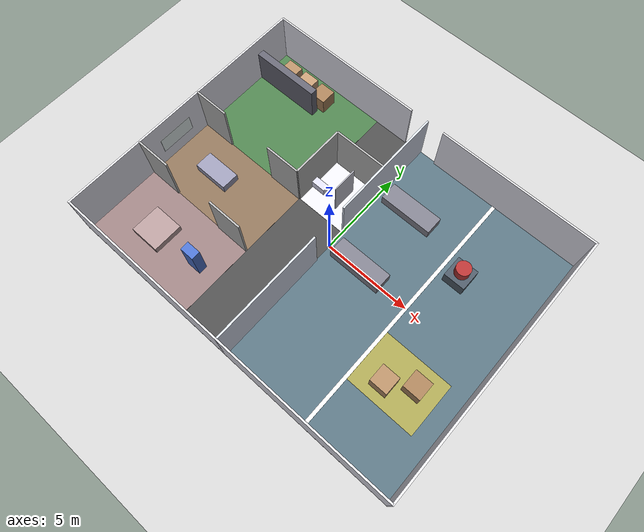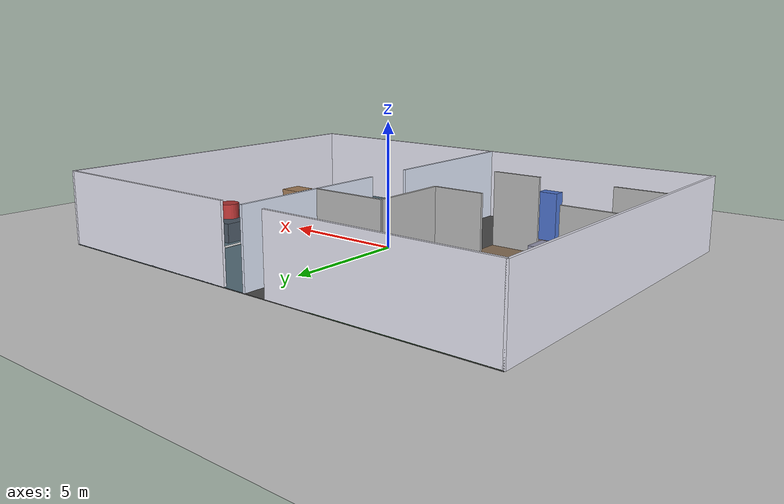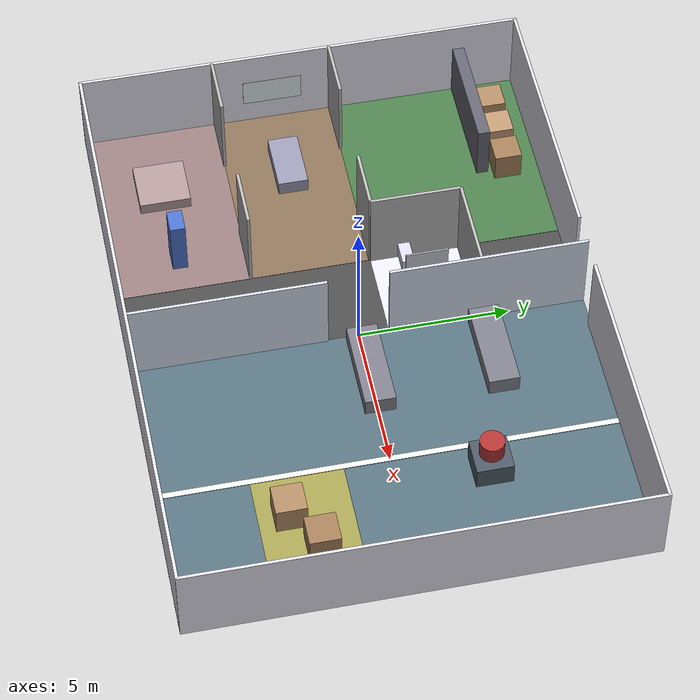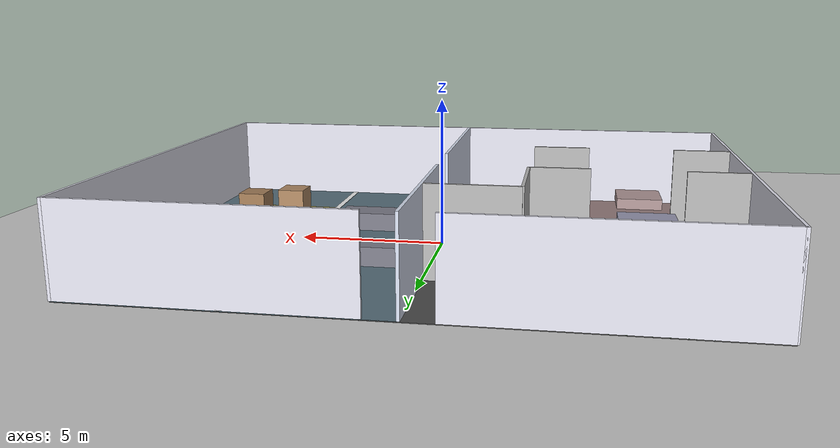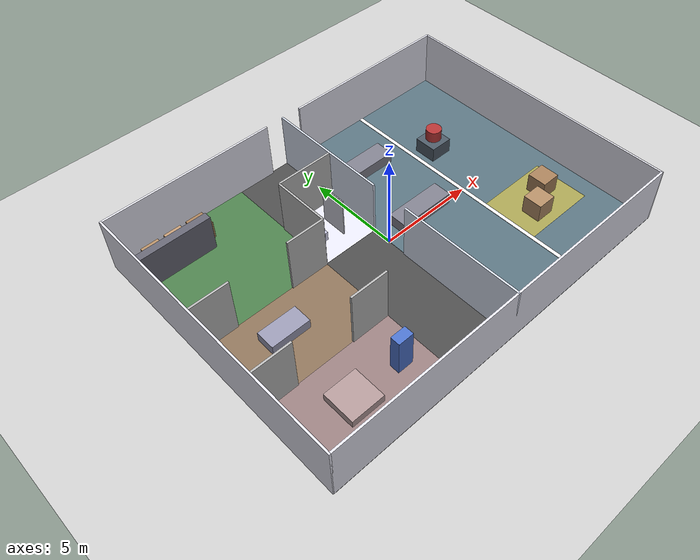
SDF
<?xml version="1.0" ?>
<sdf version="1.6">
  <world name="nice_workshop_world">

    <!-- 기본 바닥 & 태양 -->
    <include>
      <uri>model://ground_plane</uri>
    </include>

    <include>
      <uri>model://sun</uri>
    </include>

    <!-- 작업장 위쪽에 조명 하나 -->
    <light name="workshop_light" type="point">
      <pose>3 0 4 0 0 0</pose>
      <diffuse>1 1 1 1</diffuse>
      <specular>0.5 0.5 0.5 1</specular>
      <attenuation>
        <range>20</range>
        <constant>0.5</constant>
        <linear>0.01</linear>
        <quadratic>0.001</quadratic>
      </attenuation>
      <cast_shadows>true</cast_shadows>
    </light>

    <!-- 메인 건물 -->
    <model name="nice_workshop_building">
      <static>true</static>

      <!-- === 전체 건물 바닥 (20 x 15) === -->
      <link name="floor_base">
        <pose>0 0 -0.05 0 0 0</pose>
        <collision name="collision">
          <geometry>
            <box>
              <size>20 15 0.1</size>
            </box>
          </geometry>
        </collision>
        <visual name="visual">
          <geometry>
            <box>
              <size>20 15 0.1</size>
            </box>
          </geometry>
          <!-- 약간 짙은 콘크리트 느낌 -->
          <material>
            <script>
              <uri>file://media/materials/scripts/gazebo.material</uri>
              <name>Gazebo/DarkGrey</name>
            </script>
          </material>
        </visual>
      </link>

      <!-- === 각 공간별 바닥 패턴 (살짝 올려서 색만 다르게) === -->
      <!-- 작업장: 오른쪽 전체 x:0~10, y:-7.5~7.5 -->
      <link name="floor_workshop">
        <pose>5 0 0 0 0 0</pose>
        <collision name="collision">
          <geometry>
            <box>
              <size>10 15 0.02</size>
            </box>
          </geometry>
        </collision>
        <visual name="visual">
          <geometry>
            <box>
              <size>10 15 0.02</size>
            </box>
          </geometry>
          <material>
            <!-- 살짝 푸른빛 나는 공장 바닥 -->
            <ambient>0.3 0.4 0.45 1</ambient>
            <diffuse>0.35 0.45 0.5 1</diffuse>
          </material>
        </visual>
      </link>

      <!-- 창고: x:-10~-3, y:1~7.5 -->
      <link name="floor_warehouse">
        <pose>-6.5 4.25 0 0 0 0</pose>
        <collision name="collision">
          <geometry>
            <box>
              <size>7 6.5 0.02</size>
            </box>
          </geometry>
        </collision>
        <visual name="visual">
          <geometry>
            <box>
              <size>7 6.5 0.02</size>
            </box>
          </geometry>
          <material>
            <!-- 녹색 계열 (창고 느낌) -->
            <ambient>0.25 0.4 0.25 1</ambient>
            <diffuse>0.3 0.5 0.3 1</diffuse>
          </material>
        </visual>
      </link>

      <!-- 사무실: x:-10~-3, y:-3~1 -->
      <link name="floor_office">
        <pose>-6.5 -1 0 0 0 0</pose>
        <collision name="collision">
          <geometry>
            <box>
              <size>7 4 0.02</size>
            </box>
          </geometry>
        </collision>
        <visual name="visual">
          <geometry>
            <box>
              <size>7 4 0.02</size>
            </box>
          </geometry>
          <material>
            <!-- 약간 목재/카펫 느낌 -->
            <ambient>0.45 0.35 0.25 1</ambient>
            <diffuse>0.55 0.45 0.35 1</diffuse>
          </material>
        </visual>
      </link>

      <!-- 휴게실: x:-10~-3, y:-7.5~-3 -->
      <link name="floor_breakroom">
        <pose>-6.5 -5.25 0 0 0 0</pose>
        <collision name="collision">
          <geometry>
            <box>
              <size>7 4.5 0.02</size>
            </box>
          </geometry>
        </collision>
        <visual name="visual">
          <geometry>
            <box>
              <size>7 4.5 0.02</size>
            </box>
          </geometry>
          <material>
            <!-- 따뜻한 색 -->
            <ambient>0.5 0.4 0.4 1</ambient>
            <diffuse>0.6 0.5 0.5 1</diffuse>
          </material>
        </visual>
      </link>

      <!-- 화장실: x:-3~0, y:1~4 -->
      <link name="floor_restroom">
        <pose>-1.5 2.5 0 0 0 0</pose>
        <collision name="collision">
          <geometry>
            <box>
              <size>3 3 0.02</size>
            </box>
          </geometry>
        </collision>
        <visual name="visual">
          <geometry>
            <box>
              <size>3 3 0.02</size>
            </box>
          </geometry>
          <material>
            <!-- 밝은 타일 느낌 -->
            <ambient>0.8 0.8 0.85 1</ambient>
            <diffuse>0.9 0.9 0.95 1</diffuse>
          </material>
        </visual>
      </link>

      <!-- === 외벽 (높이 3m) / 출입구를 위해 중앙 부분은 띄워줌 === -->

      <!-- 북쪽 벽: 출입문(폭 3m) 가운데에 비움 -->
      <link name="wall_north_left">
        <pose>-5.5 7.45 1.5 0 0 0</pose>
        <collision name="collision">
          <geometry>
            <box>
              <size>9 0.1 3</size>
            </box>
          </geometry>
        </collision>
        <visual name="visual">
          <geometry>
            <box>
              <size>9 0.1 3</size>
            </box>
          </geometry>
          <material>
            <ambient>0.9 0.9 0.95 1</ambient>
            <diffuse>0.9 0.9 0.95 1</diffuse>
          </material>
        </visual>
      </link>

      <link name="wall_north_right">
        <pose>5.5 7.45 1.5 0 0 0</pose>
        <collision name="collision">
          <geometry>
            <box>
              <size>9 0.1 3</size>
            </box>
          </geometry>
        </collision>
        <visual name="visual">
          <geometry>
            <box>
              <size>9 0.1 3</size>
            </box>
          </geometry>
          <material>
            <ambient>0.9 0.9 0.95 1</ambient>
          </material>
        </visual>
      </link>

      <!-- 남쪽 벽 (전체) -->
      <link name="wall_south">
        <pose>0 -7.45 1.5 0 0 0</pose>
        <collision name="collision">
          <geometry>
            <box>
              <size>20 0.1 3</size>
            </box>
          </geometry>
        </collision>
        <visual name="visual">
          <geometry>
            <box>
              <size>20 0.1 3</size>
            </box>
          </geometry>
          <material>
            <ambient>0.9 0.9 0.95 1</ambient>
          </material>
        </visual>
      </link>

      <!-- 동쪽 벽 (전체) -->
      <link name="wall_east">
        <pose>10 0 1.5 0 0 0</pose>
        <collision name="collision">
          <geometry>
            <box>
              <size>0.1 15 3</size>
            </box>
          </geometry>
        </collision>
        <visual name="visual">
          <geometry>
            <box>
              <size>0.1 15 3</size>
            </box>
          </geometry>
          <material>
            <ambient>0.9 0.9 0.95 1</ambient>
          </material>
        </visual>
      </link>

      <!-- 서쪽 벽 (전체) -->
      <link name="wall_west">
        <pose>-10 0 1.5 0 0 0</pose>
        <collision name="collision">
          <geometry>
            <box>
              <size>0.1 15 3</size>
            </box>
          </geometry>
        </collision>
        <visual name="visual">
          <geometry>
            <box>
              <size>0.1 15 3</size>
            </box>
          </geometry>
          <material>
            <ambient>0.9 0.9 0.95 1</ambient>
          </material>
        </visual>
      </link>

      <!-- === 내부 벽 (문틈 남겨서 동선 표현) === -->
      <!-- 작업장과 왼쪽 구역을 가르는 중앙 벽 (중앙 부분에 문) -->
      <!-- 위쪽 구간 -->
      <link name="inner_wall_center_top">
        <pose>0 4.25 1.5 0 0 0</pose>
        <collision name="collision">
          <geometry>
            <box>
              <size>0.1 6.5 3</size>
            </box>
          </geometry>
        </collision>
        <visual name="visual">
          <geometry>
            <box>
              <size>0.1 6.5 3</size>
            </box>
          </geometry>
          <material>
            <ambient>0.85 0.88 0.95 1</ambient>
          </material>
        </visual>
      </link>

      <!-- 아래쪽 구간 -->
      <link name="inner_wall_center_bottom">
        <pose>0 -4.25 1.5 0 0 0</pose>
        <collision name="collision">
          <geometry>
            <box>
              <size>0.1 6.5 3</size>
            </box>
          </geometry>
        </collision>
        <visual name="visual">
          <geometry>
            <box>
              <size>0.1 6.5 3</size>
            </box>
          </geometry>
          <material>
            <ambient>0.85 0.88 0.95 1</ambient>
          </material>
        </visual>
      </link>

      <!-- 왼쪽 큰 구역 세로 분할(창고/사무실/휴게실) -->
      <!-- 창고 / 사무실 경계: y=1, 문 중앙에 비움 -->
      <link name="wall_warehouse_office_left">
        <pose>-9 1 1.5 0 0 0</pose>
        <collision name="collision">
          <geometry>
            <box>
              <size>2 0.1 3</size>
            </box>
          </geometry>
        </collision>
        <visual name="visual">
          <geometry>
            <box>
              <size>2 0.1 3</size>
            </box>
          </geometry>
        </visual>
      </link>

      <link name="wall_warehouse_office_right">
        <pose>-4 1 1.5 0 0 0</pose>
        <collision name="collision">
          <geometry>
            <box>
              <size>2 0.1 3</size>
            </box>
          </geometry>
        </collision>
        <visual name="visual">
          <geometry>
            <box>
              <size>2 0.1 3</size>
            </box>
          </geometry>
        </visual>
      </link>

      <!-- 사무실 / 휴게실 경계: y=-3 -->
      <link name="wall_office_break_left">
        <pose>-9 -3 1.5 0 0 0</pose>
        <collision name="collision">
          <geometry>
            <box>
              <size>2 0.1 3</size>
            </box>
          </geometry>
        </collision>
        <visual name="visual">
          <geometry>
            <box>
              <size>2 0.1 3</size>
            </box>
          </geometry>
        </visual>
      </link>

      <link name="wall_office_break_right">
        <pose>-4 -3 1.5 0 0 0</pose>
        <collision name="collision">
          <geometry>
            <box>
              <size>2 0.1 3</size>
            </box>
          </geometry>
        </collision>
        <visual name="visual">
          <geometry>
            <box>
              <size>2 0.1 3</size>
            </box>
          </geometry>
        </visual>
      </link>

      <!-- 화장실 구역 벽 (x=-3~0, y:1~4) -->
      <link name="wall_restroom_back">
        <pose>-1.5 4 1.5 0 0 0</pose>
        <collision name="collision">
          <geometry>
            <box>
              <size>3 0.1 3</size>
            </box>
          </geometry>
        </collision>
        <visual name="visual">
          <geometry>
            <box>
              <size>3 0.1 3</size>
            </box>
          </geometry>
        </visual>
      </link>

      <link name="wall_restroom_side_left">
        <pose>-3 2.5 1.5 0 0 0</pose>
        <collision name="collision">
          <geometry>
            <box>
              <size>0.1 3 3</size>
            </box>
          </geometry>
        </collision>
        <visual name="visual">
          <geometry>
            <box>
              <size>0.1 3 3</size>
            </box>
          </geometry>
        </visual>
      </link>

      <!-- 작업장 쪽으로 열려 있는 앞쪽은 문 없는 오픈 구조 -->

      <!-- ===== 창고 내부: 선반 + 박스들 정렬 ===== -->
      <link name="warehouse_rack_1">
        <pose>-8 5.5 1 0 0 0</pose>
        <collision name="collision">
          <geometry>
            <box>
              <size>4 0.4 2</size>
            </box>
          </geometry>
        </collision>
        <visual name="visual">
          <geometry>
            <box>
              <size>4 0.4 2</size>
            </box>
          </geometry>
          <material>
            <ambient>0.4 0.4 0.45 1</ambient>
          </material>
        </visual>
      </link>

      <!-- 박스 여러 개 -->
      <link name="warehouse_box_1">
        <pose>-8.5 6.3 0.5 0 0 0</pose>
        <collision name="collision">
          <geometry>
            <box>
              <size>0.9 0.9 1</size>
            </box>
          </geometry>
        </collision>
        <visual name="visual">
          <geometry>
            <box>
              <size>0.9 0.9 1</size>
            </box>
          </geometry>
          <material>
            <ambient>0.7 0.55 0.4 1</ambient>
          </material>
        </visual>
      </link>

      <link name="warehouse_box_2">
        <pose>-7.3 6.3 0.5 0 0 0</pose>
        <collision name="collision">
          <geometry>
            <box>
              <size>0.9 0.9 1</size>
            </box>
          </geometry>
        </collision>
        <visual name="visual">
          <geometry>
            <box>
              <size>0.9 0.9 1</size>
            </box>
          </geometry>
          <material>
            <ambient>0.75 0.6 0.45 1</ambient>
          </material>
        </visual>
      </link>

      <link name="warehouse_box_3">
        <pose>-6.1 6.3 0.5 0 0 0</pose>
        <collision name="collision">
          <geometry>
            <box>
              <size>0.9 0.9 1</size>
            </box>
          </geometry>
        </collision>
        <visual name="visual">
          <geometry>
            <box>
              <size>0.9 0.9 1</size>
            </box>
          </geometry>
          <material>
            <ambient>0.65 0.5 0.35 1</ambient>
          </material>
        </visual>
      </link>

      <!-- ===== 사무실: 책상 + 벽에 칠판(화이트보드 느낌) ===== -->
      <link name="office_table">
        <pose>-7 -1 0.75 0 0 0</pose>
        <collision name="collision">
          <geometry>
            <box>
              <size>2 1 0.5</size>
            </box>
          </geometry>
        </collision>
        <visual name="visual">
          <geometry>
            <box>
              <size>2 1 0.5</size>
            </box>
          </geometry>
          <material>
            <ambient>0.6 0.6 0.7 1</ambient>
          </material>
        </visual>
      </link>

      <link name="office_board">
        <pose>-9.9 -1 1.4 0 0 0</pose>
        <collision name="collision">
          <geometry>
            <box>
              <size>0.02 2 1</size>
            </box>
          </geometry>
        </collision>
        <visual name="visual">
          <geometry>
            <box>
              <size>0.02 2 1</size>
            </box>
          </geometry>
          <material>
            <ambient>0.9 0.95 0.95 1</ambient>
            <diffuse>0.9 0.95 0.95 1</diffuse>
          </material>
        </visual>
      </link>

      <!-- ===== 휴게실: 테이블 + 자판기 느낌 박스 ===== -->
      <link name="breakroom_table">
        <pose>-7 -5.3 0.6 0 0 0</pose>
        <collision name="collision">
          <geometry>
            <box>
              <size>1.7 1.7 0.4</size>
            </box>
          </geometry>
        </collision>
        <visual name="visual">
          <geometry>
            <box>
              <size>1.7 1.7 0.4</size>
            </box>
          </geometry>
          <material>
            <ambient>0.7 0.6 0.6 1</ambient>
          </material>
        </visual>
      </link>

      <link name="breakroom_vending">
        <pose>-4.3 -5.2 1.0 0 0 0</pose>
        <collision name="collision">
          <geometry>
            <box>
              <size>0.8 0.5 2.0</size>
            </box>
          </geometry>
        </collision>
        <visual name="visual">
          <geometry>
            <box>
              <size>0.8 0.5 2.0</size>
            </box>
          </geometry>
          <material>
            <ambient>0.3 0.4 0.7 1</ambient>
            <diffuse>0.3 0.45 0.8 1</diffuse>
          </material>
        </visual>
      </link>

      <!-- ===== 화장실: 세면대 + 칸막이 박스 ===== -->
      <link name="restroom_sink">
        <pose>-2.5 2.1 0.5 0 0 0</pose>
        <collision name="collision">
          <geometry>
            <box>
              <size>0.8 0.4 0.5</size>
            </box>
          </geometry>
        </collision>
        <visual name="visual">
          <geometry>
            <box>
              <size>0.8 0.4 0.5</size>
            </box>
          </geometry>
          <material>
            <ambient>0.85 0.85 0.95 1</ambient>
          </material>
        </visual>
      </link>

      <link name="restroom_partition">
        <pose>-1.2 2.5 1.1 0 0 0</pose>
        <collision name="collision">
          <geometry>
            <box>
              <size>0.05 1.4 2.2</size>
            </box>
          </geometry>
        </collision>
        <visual name="visual">
          <geometry>
            <box>
              <size>0.05 1.4 2.2</size>
            </box>
          </geometry>
          <material>
            <ambient>0.8 0.8 0.85 1</ambient>
          </material>
        </visual>
      </link>

      <!-- ===== 작업장: 작업대, 기계, 파렛트 구역 ===== -->

      <!-- 작업대 (롱 테이블) -->
      <link name="workbench_1">
        <pose>2 4 0.8 0 0 0</pose>
        <collision name="collision">
          <geometry>
            <box>
              <size>3 1 0.6</size>
            </box>
          </geometry>
        </collision>
        <visual name="visual">
          <geometry>
            <box>
              <size>3 1 0.6</size>
            </box>
          </geometry>
          <material>
            <ambient>0.5 0.5 0.55 1</ambient>
          </material>
        </visual>
      </link>

      <link name="workbench_2">
        <pose>2 0 0.8 0 0 0</pose>
        <collision name="collision">
          <geometry>
            <box>
              <size>3 1 0.6</size>
            </box>
          </geometry>
        </collision>
        <visual name="visual">
          <geometry>
            <box>
              <size>3 1 0.6</size>
            </box>
          </geometry>
          <material>
            <ambient>0.5 0.5 0.55 1</ambient>
          </material>
        </visual>
      </link>

      <!-- 공장 기계 느낌: 낮은 박스 위에 실린더 -->
      <link name="machine_1_base">
        <pose>6 3 0.4 0 0 0</pose>
        <collision name="collision">
          <geometry>
            <box>
              <size>1.2 1.2 0.8</size>
            </box>
          </geometry>
        </collision>
        <visual name="visual">
          <geometry>
            <box>
              <size>1.2 1.2 0.8</size>
            </box>
          </geometry>
          <material>
            <ambient>0.3 0.35 0.4 1</ambient>
          </material>
        </visual>
      </link>

      <link name="machine_1_cylinder">
        <pose>6 3 1.2 0 0 0</pose>
        <collision name="collision">
          <geometry>
            <cylinder>
              <radius>0.4</radius>
              <length>0.6</length>
            </cylinder>
          </geometry>
        </collision>
        <visual name="visual">
          <geometry>
            <cylinder>
              <radius>0.4</radius>
              <length>0.6</length>
            </cylinder>
          </geometry>
          <material>
            <ambient>0.7 0.2 0.2 1</ambient>
          </material>
        </visual>
      </link>

      <!-- 파렛트 존: 노란 띠 + 박스 -->
      <link name="pallet_zone_mark">
        <pose>7 -3 0.01 0 0 0</pose>
        <collision name="collision">
          <geometry>
            <box>
              <size>4 3 0.02</size>
            </box>
          </geometry>
        </collision>
        <visual name="visual">
          <geometry>
            <box>
              <size>4 3 0.02</size>
            </box>
          </geometry>
          <material>
            <ambient>0.8 0.7 0.2 0.6</ambient>
            <diffuse>0.9 0.8 0.25 0.6</diffuse>
          </material>
        </visual>
      </link>

      <link name="pallet_box_1">
        <pose>6.5 -3.5 0.5 0 0 0</pose>
        <collision name="collision">
          <geometry>
            <box>
              <size>1 1 1</size>
            </box>
          </geometry>
        </collision>
        <visual name="visual">
          <geometry>
            <box>
              <size>1 1 1</size>
            </box>
          </geometry>
          <material>
            <ambient>0.7 0.55 0.4 1</ambient>
          </material>
        </visual>
      </link>

      <link name="pallet_box_2">
        <pose>7.8 -2.7 0.5 0 0 0</pose>
        <collision name="collision">
          <geometry>
            <box>
              <size>1 1 1</size>
            </box>
          </geometry>
        </collision>
        <visual name="visual">
          <geometry>
            <box>
              <size>1 1 1</size>
            </box>
          </geometry>
          <material>
            <ambient>0.65 0.5 0.35 1</ambient>
          </material>
        </visual>
      </link>

      <!-- 안전 통로 표시: 작업장 중앙에 흰색 선 -->
      <link name="safety_line">
        <pose>5 0 0.02 0 0 0</pose>
        <collision name="collision">
          <geometry>
            <box>
              <size>0.2 15 0.02</size>
            </box>
          </geometry>
        </collision>
        <visual name="visual">
          <geometry>
            <box>
              <size>0.2 15 0.02</size>
            </box>
          </geometry>
          <material>
            <ambient>0.95 0.95 0.95 1</ambient>
          </material>
        </visual>
      </link>

    </model>

  </world>
</sdf>
